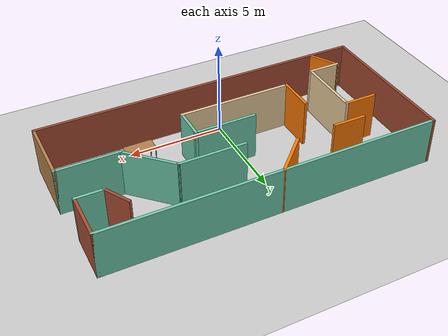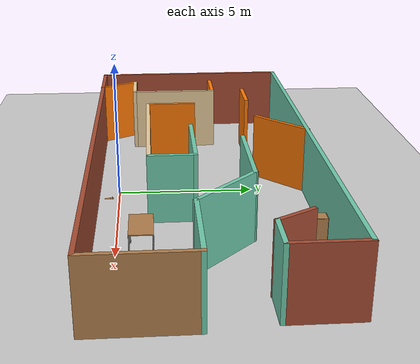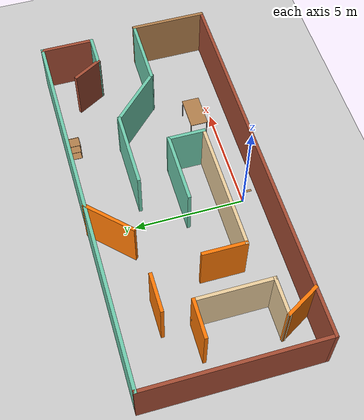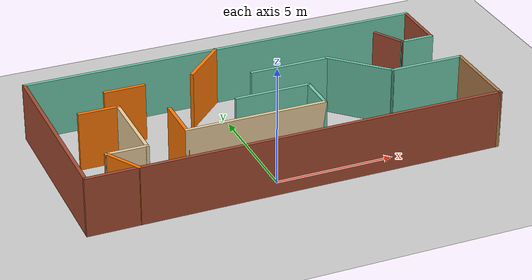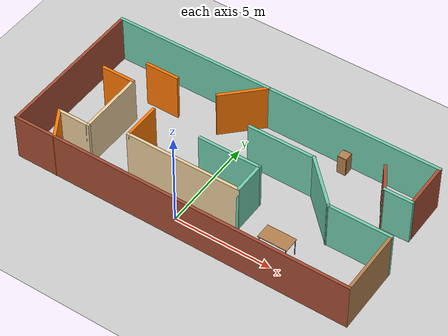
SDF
<sdf version="1.6">
 <world name="default">
  <light name="sun" type="directional">
   <pose>0 0 10 0 -0 0</pose>
   <diffuse>0.8 0.8 0.8 1</diffuse>
   <specular>0.2 0.2 0.2 1</specular>
   <attenuation>
    <range>1000</range>
    <constant>0.9</constant>
    <linear>0.01</linear>
    <quadratic>0.001</quadratic>
   </attenuation>
   <direction>-0.5 0.1 -0.9</direction>
  </light>
  <model name="ground_plane">
   <static>1</static>
   <link name="link">
    <collision name="collision">
     <geometry><plane><normal>0 0 1</normal><size>100 100</size></plane></geometry>
     <surface>
      <contact><collide_bitmask>65535</collide_bitmask></contact>
      <friction><ode><mu>100</mu><mu2>50</mu2></ode></friction>
     </surface>
    </collision>
    <visual name="visual">
     <cast_shadows>0</cast_shadows>
     <geometry><plane><normal>0 0 1</normal><size>100 100</size></plane></geometry>
     <material>
      <script><uri>file://media/materials/scripts/gazebo.material</uri><name>Gazebo/Grey</name></script>
     </material>
    </visual>
   </link>
  </model>
  <gravity>0 0 -9.8</gravity>
  <magnetic_field>6e-06 2.3e-05 -4.2e-05</magnetic_field>
  <atmosphere type="adiabatic"/>
  <physics name="default_physics" default="0" type="ode">
   <max_step_size>0.001</max_step_size>
   <real_time_factor>1</real_time_factor>
   <real_time_update_rate>1000</real_time_update_rate>
  </physics>
  <scene><ambient>0.4 0.4 0.4 1</ambient><background>0.7 0.7 0.7 1</background><shadows>1</shadows></scene>
  <spherical_coordinates>
   <surface_model>EARTH_WGS84</surface_model>
   <latitude_deg>0</latitude_deg>
   <longitude_deg>0</longitude_deg>
   <elevation>0</elevation>
   <heading_deg>0</heading_deg>
  </spherical_coordinates>
  <model name="miro_building">
   <pose>0.65367 3.11102 0 0 -0 0</pose>
   <link name="Wall_10">
    <collision name="Wall_10_Collision">
     <geometry><box><size>3.5 0.15 2.5</size></box></geometry>
     <pose>0 0 1.25 0 -0 0</pose>
    </collision>
    <visual name="Wall_10_Visual">
     <pose>0 0 1.25 0 -0 0</pose>
     <geometry><box><size>3.5 0.15 2.5</size></box></geometry>
     <material>
      <script><uri>file://media/materials/scripts/gazebo.material</uri><name>Gazebo/Grey</name></script>
      <ambient>0.435294 0.796078 0.67451 1</ambient>
     </material>
     <meta><layer>0</layer></meta>
    </visual>
    <pose>1.88475 1.43157 0 0 -0 3.14159</pose>
   </link>
   <link name="Wall_12">
    <collision name="Wall_12_Collision">
     <geometry><box><size>17.25 0.15 2.5</size></box></geometry>
     <pose>0 0 1.25 0 -0 0</pose>
    </collision>
    <visual name="Wall_12_Visual">
     <pose>0 0 1.25 0 -0 0</pose>
     <geometry><box><size>17.25 0.15 2.5</size></box></geometry>
     <material>
      <script><uri>file://media/materials/scripts/gazebo.material</uri><name>Gazebo/Grey</name></script>
      <ambient>0.435294 0.796078 0.67451 1</ambient>
     </material>
     <meta><layer>0</layer></meta>
    </visual>
    <pose>-0.125 3.91631 0 0 -0 0</pose>
   </link>
   <link name="Wall_13">
    <collision name="Wall_13_Collision">
     <geometry><box><size>2.5 0.15 2.5</size></box></geometry>
     <pose>0 0 1.25 0 -0 0</pose>
    </collision>
    <visual name="Wall_13_Visual">
     <pose>0 0 1.25 0 -0 0</pose>
     <geometry><box><size>2.5 0.15 2.5</size></box></geometry>
     <material>
      <script><uri>file://media/materials/scripts/gazebo.material</uri><name>Gazebo/Bricks</name></script>
      <ambient>1 1 1 1</ambient>
     </material>
     <meta><layer>0</layer></meta>
    </visual>
    <pose>8.425 2.74131 0 0 0 -1.5708</pose>
   </link>
   <link name="Wall_14">
    <collision name="Wall_14_Collision">
     <geometry><box><size>1.5 0.15 2.5</size></box></geometry>
     <pose>0 0 1.25 0 -0 0</pose>
    </collision>
    <visual name="Wall_14_Visual">
     <pose>0 0 1.25 0 -0 0</pose>
     <geometry><box><size>1.5 0.15 2.5</size></box></geometry>
     <material>
      <script><uri>file://media/materials/scripts/gazebo.material</uri><name>Gazebo/Grey</name></script>
      <ambient>0.435294 0.796078 0.67451 1</ambient>
     </material>
     <meta><layer>0</layer></meta>
    </visual>
    <pose>7.75 1.56631 0 0 -0 3.14159</pose>
   </link>
   <link name="Wall_15">
    <collision name="Wall_15_Collision">
     <geometry><box><size>1.5 0.15 2.5</size></box></geometry>
     <pose>0 0 1.25 0 -0 0</pose>
    </collision>
    <visual name="Wall_15_Visual">
     <pose>0 0 1.25 0 -0 0</pose>
     <geometry><box><size>1.5 0.15 2.5</size></box></geometry>
     <material>
      <script><uri>file://media/materials/scripts/gazebo.material</uri><name>Gazebo/Bricks</name></script>
      <ambient>1 1 1 1</ambient>
     </material>
     <meta><layer>0</layer></meta>
    </visual>
    <pose>6.7375 2.15088 0 0 -0 2.0944</pose>
   </link>
   <link name="Wall_17">
    <collision name="Wall_17_Collision">
     <geometry><box><size>2 0.15 2.5</size></box></geometry>
     <pose>0 0 1.25 0 -0 0</pose>
    </collision>
    <visual name="Wall_17_Visual">
     <pose>0 0 1.25 0 -0 0</pose>
     <geometry><box><size>2 0.15 2.5</size></box></geometry>
     <material>
      <script><uri>file://media/materials/scripts/gazebo.material</uri><name>Gazebo/Grey</name></script>
      <ambient>0.996078 0.47451 0.0196078 1</ambient>
     </material>
     <meta><layer>0</layer></meta>
    </visual>
    <pose>-3.94925 -1.05029 0 0 0 -1.5708</pose>
   </link>
   <link name="Wall_18">
    <collision name="Wall_18_Collision">
     <geometry><box><size>6 0.15 2.5</size></box></geometry>
     <pose>0 0 1.25 0 -0 0</pose>
    </collision>
    <visual name="Wall_18_Visual">
     <pose>0 0 1.25 0 -0 0</pose>
     <geometry><box><size>6 0.15 2.5</size></box></geometry>
     <material>
      <script><uri>file://media/materials/scripts/gazebo.material</uri><name>Gazebo/Grey</name></script>
      <ambient>0.921569 0.807843 0.615686 1</ambient>
     </material>
     <meta><layer>0</layer></meta>
    </visual>
    <pose>-1.02425 -1.97529 0 0 -0 0</pose>
   </link>
   <link name="Wall_19">
    <collision name="Wall_19_Collision">
     <geometry><box><size>1.75 0.15 2.5</size></box></geometry>
     <pose>0 0 1.25 0 -0 0</pose>
    </collision>
    <visual name="Wall_19_Visual">
     <pose>0 0 1.25 0 -0 0</pose>
     <geometry><box><size>1.75 0.15 2.5</size></box></geometry>
     <material>
      <script><uri>file://media/materials/scripts/gazebo.material</uri><name>Gazebo/Grey</name></script>
      <ambient>0.435294 0.796078 0.67451 1</ambient>
     </material>
     <meta><layer>0</layer></meta>
    </visual>
    <pose>1.90075 -1.17529 0 0 -0 1.5708</pose>
   </link>
   <link name="Wall_20">
    <collision name="Wall_20_Collision">
     <geometry><box><size>3.25 0.15 2.5</size></box></geometry>
     <pose>0 0 1.25 0 -0 0</pose>
    </collision>
    <visual name="Wall_20_Visual">
     <pose>0 0 1.25 0 -0 0</pose>
     <geometry><box><size>3.25 0.15 2.5</size></box></geometry>
     <material>
      <script><uri>file://media/materials/scripts/gazebo.material</uri><name>Gazebo/Grey</name></script>
      <ambient>0.435294 0.796078 0.67451 1</ambient>
     </material>
     <meta><layer>0</layer></meta>
    </visual>
    <pose>0.350752 -0.375291 0 0 -0 3.14159</pose>
   </link>
   <link name="Wall_22">
    <collision name="Wall_22_Collision">
     <geometry><box><size>2.5 0.15 2.5</size></box></geometry>
     <pose>0 0 1.25 0 -0 0</pose>
    </collision>
    <visual name="Wall_22_Visual">
     <pose>0 0 1.25 0 -0 0</pose>
     <geometry><box><size>2.5 0.15 2.5</size></box></geometry>
     <material>
      <script><uri>file://media/materials/scripts/gazebo.material</uri><name>Gazebo/Grey</name></script>
      <ambient>0.996078 0.47451 0.0196078 1</ambient>
     </material>
     <meta><layer>0</layer></meta>
    </visual>
    <pose>-1.25836 3.08734 0 0 0 -2.35619</pose>
   </link>
   <link name="Wall_24">
    <collision name="Wall_24_Collision">
     <geometry><box><size>1.75 0.15 2.5</size></box></geometry>
     <pose>0 0 1.25 0 -0 0</pose>
    </collision>
    <visual name="Wall_24_Visual">
     <pose>0 0 1.25 0 -0 0</pose>
     <geometry><box><size>1.75 0.15 2.5</size></box></geometry>
     <material>
      <script><uri>file://media/materials/scripts/gazebo.material</uri><name>Gazebo/Grey</name></script>
      <ambient>0.996078 0.47451 0.0196078 1</ambient>
     </material>
     <meta><layer>0</layer></meta>
    </visual>
    <pose>-5.06229 2.11819 0 0 -0 3.14159</pose>
   </link>
   <link name="Wall_26">
    <collision name="Wall_26_Collision">
     <geometry><box><size>1.75 0.15 2.5</size></box></geometry>
     <pose>0 0 1.25 0 -0 0</pose>
    </collision>
    <visual name="Wall_26_Visual">
     <pose>0 0 1.25 0 -0 0</pose>
     <geometry><box><size>1.75 0.15 2.5</size></box></geometry>
     <material>
      <script><uri>file://media/materials/scripts/gazebo.material</uri><name>Gazebo/Grey</name></script>
      <ambient>0.996078 0.47451 0.0196078 1</ambient>
     </material>
     <meta><layer>0</layer></meta>
    </visual>
    <pose>-6.56664 0.813839 0 0 -0 0</pose>
   </link>
   <link name="Wall_27">
    <collision name="Wall_27_Collision">
     <geometry><box><size>3.5 0.15 2.5</size></box></geometry>
     <pose>0 0 1.25 0 -0 0</pose>
    </collision>
    <visual name="Wall_27_Visual">
     <pose>0 0 1.25 0 -0 0</pose>
     <geometry><box><size>3.5 0.15 2.5</size></box></geometry>
     <material>
      <script><uri>file://media/materials/scripts/gazebo.material</uri><name>Gazebo/Grey</name></script>
      <ambient>0.921569 0.807843 0.615686 1</ambient>
     </material>
     <meta><layer>0</layer></meta>
    </visual>
    <pose>-5.76664 -0.861161 0 0 0 -1.5708</pose>
   </link>
   <link name="Wall_29">
    <collision name="Wall_29_Collision">
     <geometry><box><size>1.75 0.15 2.5</size></box></geometry>
     <pose>0 0 1.25 0 -0 0</pose>
    </collision>
    <visual name="Wall_29_Visual">
     <pose>0 0 1.25 0 -0 0</pose>
     <geometry><box><size>1.75 0.15 2.5</size></box></geometry>
     <material>
      <script><uri>file://media/materials/scripts/gazebo.material</uri><name>Gazebo/Grey</name></script>
      <ambient>0.921569 0.807843 0.615686 1</ambient>
     </material>
     <meta><layer>0</layer></meta>
    </visual>
    <pose>-6.56664 -2.53616 0 0 -0 3.14159</pose>
   </link>
   <link name="Wall_3">
    <collision name="Wall_3_Collision">
     <geometry><box><size>8 0.15 2.5</size></box></geometry>
     <pose>0 0 1.25 0 -0 0</pose>
    </collision>
    <visual name="Wall_3_Visual">
     <pose>0 0 1.25 0 -0 0</pose>
     <geometry><box><size>8 0.15 2.5</size></box></geometry>
     <material>
      <script><uri>file://media/materials/scripts/gazebo.material</uri><name>Gazebo/Bricks</name></script>
      <ambient>1 1 1 1</ambient>
     </material>
     <meta><layer>0</layer></meta>
    </visual>
    <pose>-8.675 -0.008686 0 0 -0 1.5708</pose>
   </link>
   <link name="Wall_30">
    <collision name="Wall_30_Collision">
     <geometry><box><size>1.75 0.15 2.5</size></box></geometry>
     <pose>0 0 1.25 0 -0 0</pose>
    </collision>
    <visual name="Wall_30_Visual">
     <pose>0 0 1.25 0 -0 0</pose>
     <geometry><box><size>1.75 0.15 2.5</size></box></geometry>
     <material>
      <script><uri>file://media/materials/scripts/gazebo.material</uri><name>Gazebo/Grey</name></script>
      <ambient>0.996078 0.47451 0.0196078 1</ambient>
     </material>
     <meta><layer>0</layer></meta>
    </visual>
    <pose>-6.96664 -3.22898 0 0 0 -1.0472</pose>
   </link>
   <link name="Wall_6">
    <collision name="Wall_6_Collision">
     <geometry><box><size>17.5 0.15 2.5</size></box></geometry>
     <pose>0 0 1.25 0 -0 0</pose>
    </collision>
    <visual name="Wall_6_Visual">
     <pose>0 0 1.25 0 -0 0</pose>
     <geometry><box><size>17.5 0.15 2.5</size></box></geometry>
     <material>
      <script><uri>file://media/materials/scripts/gazebo.material</uri><name>Gazebo/Bricks</name></script>
      <ambient>1 1 1 1</ambient>
     </material>
     <meta><layer>0</layer></meta>
    </visual>
    <pose>0 -3.93369 0 0 -0 0</pose>
   </link>
   <link name="Wall_7">
    <collision name="Wall_7_Collision">
     <geometry><box><size>3.5 0.15 2.5</size></box></geometry>
     <pose>0 0 1.25 0 -0 0</pose>
    </collision>
    <visual name="Wall_7_Visual">
     <pose>0 0 1.25 0 -0 0</pose>
     <geometry><box><size>3.5 0.15 2.5</size></box></geometry>
     <material>
      <script><uri>file://media/materials/scripts/gazebo.material</uri><name>Gazebo/Wood</name></script>
      <ambient>1 1 1 1</ambient>
     </material>
     <meta><layer>0</layer></meta>
    </visual>
    <pose>8.675 -2.25869 0 0 -0 1.5708</pose>
   </link>
   <link name="Wall_8">
    <collision name="Wall_8_Collision">
     <geometry><box><size>3.25 0.15 2.5</size></box></geometry>
     <pose>0 0 1.25 0 -0 0</pose>
    </collision>
    <visual name="Wall_8_Visual">
     <pose>0 0 1.25 0 -0 0</pose>
     <geometry><box><size>3.25 0.15 2.5</size></box></geometry>
     <material>
      <script><uri>file://media/materials/scripts/gazebo.material</uri><name>Gazebo/Grey</name></script>
      <ambient>0.435294 0.796078 0.67451 1</ambient>
     </material>
     <meta><layer>0</layer></meta>
    </visual>
    <pose>7.125 -0.583686 0 0 -0 3.14159</pose>
   </link>
   <link name="Wall_9">
    <collision name="Wall_9_Collision">
     <geometry><box><size>3 0.15 2.5</size></box></geometry>
     <pose>0 0 1.25 0 -0 0</pose>
    </collision>
    <visual name="Wall_9_Visual">
     <pose>0 0 1.25 0 -0 0</pose>
     <geometry><box><size>3 0.15 2.5</size></box></geometry>
     <material>
      <script><uri>file://media/materials/scripts/gazebo.material</uri><name>Gazebo/Grey</name></script>
      <ambient>0.435294 0.796078 0.67451 1</ambient>
     </material>
     <meta><layer>0</layer></meta>
    </visual>
    <pose>4.56737 0.423941 0 0 -0 2.35619</pose>
   </link>
   <static>1</static>
  </model>
  <plugin name="collision_map_creator" filename="libcollision_map_creator.so"/>
  <model name="table">
   <static>1</static>
   <link name="link">
    <collision name="surface">
     <pose>0 0 1 0 -0 0</pose>
     <geometry><box><size>1.5 0.8 0.03</size></box></geometry>
     <surface><friction><ode><mu>0.6</mu><mu2>0.6</mu2></ode></friction></surface>
    </collision>
    <visual name="visual1">
     <pose>0 0 1 0 -0 0</pose>
     <geometry><box><size>1.5 0.8 0.03</size></box></geometry>
     <material>
      <script><uri>file://media/materials/scripts/gazebo.material</uri><name>Gazebo/Wood</name></script>
     </material>
    </visual>
    <collision name="front_left_leg">
     <pose>0.68 0.38 0.5 0 -0 0</pose>
     <geometry><cylinder><radius>0.02</radius><length>1</length></cylinder></geometry>
    </collision>
    <visual name="front_left_leg">
     <pose>0.68 0.38 0.5 0 -0 0</pose>
     <geometry><cylinder><radius>0.02</radius><length>1</length></cylinder></geometry>
     <material>
      <script><uri>file://media/materials/scripts/gazebo.material</uri><name>Gazebo/Grey</name></script>
     </material>
    </visual>
    <collision name="front_right_leg">
     <pose>0.68 -0.38 0.5 0 -0 0</pose>
     <geometry><cylinder><radius>0.02</radius><length>1</length></cylinder></geometry>
    </collision>
    <visual name="front_right_leg">
     <pose>0.68 -0.38 0.5 0 -0 0</pose>
     <geometry><cylinder><radius>0.02</radius><length>1</length></cylinder></geometry>
     <material>
      <script><uri>file://media/materials/scripts/gazebo.material</uri><name>Gazebo/Grey</name></script>
     </material>
    </visual>
    <collision name="back_right_leg">
     <pose>-0.68 -0.38 0.5 0 -0 0</pose>
     <geometry><cylinder><radius>0.02</radius><length>1</length></cylinder></geometry>
    </collision>
    <visual name="back_right_leg">
     <pose>-0.68 -0.38 0.5 0 -0 0</pose>
     <geometry><cylinder><radius>0.02</radius><length>1</length></cylinder></geometry>
     <material>
      <script><uri>file://media/materials/scripts/gazebo.material</uri><name>Gazebo/Grey</name></script>
     </material>
    </visual>
    <collision name="back_left_leg">
     <pose>-0.68 0.38 0.5 0 -0 0</pose>
     <geometry><cylinder><radius>0.02</radius><length>1</length></cylinder></geometry>
    </collision>
    <visual name="back_left_leg">
     <pose>-0.68 0.38 0.5 0 -0 0</pose>
     <geometry><cylinder><radius>0.02</radius><length>1</length></cylinder></geometry>
     <material>
      <script><uri>file://media/materials/scripts/gazebo.material</uri><name>Gazebo/Grey</name></script>
     </material>
    </visual>
   </link>
   <pose>4.75405 0.852451 0 0 -0 0</pose>
  </model>
  <model name="cabinet">
   <static>1</static>
   <link name="cabinet_bottom_plate">
    <inertial>
     <pose>0 0 -1 0 -0 0</pose>
     <inertia><ixx>2.05</ixx><ixy>0</ixy><ixz>0</ixz><iyy>2.05</iyy><iyz>0</iyz><izz>2.05</izz></inertia>
     <mass>25</mass>
    </inertial>
    <collision name="cabinet_bottom_plate_geom">
     <pose>0 0 0.01 0 -0 0</pose>
     <geometry><box><size>0.45 0.45 0.02</size></box></geometry>
    </collision>
    <visual name="cabinet_bottom_plate_geom_visual">
     <pose>0 0 0.01 0 -0 0</pose>
     <geometry><box><size>0.45 0.45 0.02</size></box></geometry>
     <material>
      <script><uri>file://media/materials/scripts/gazebo.material</uri><name>Gazebo/Wood</name></script>
     </material>
    </visual>
    <collision name="cabinet_bottom_plate_geom_cabinet_back_plate">
     <pose>0.235 0 0.51 0 -0 0</pose>
     <geometry><box><size>0.02 0.45 1.02</size></box></geometry>
    </collision>
    <visual name="cabinet_bottom_plate_geom_cabinet_back_plate_visual">
     <pose>0.235 0 0.51 0 -0 0</pose>
     <geometry><box><size>0.02 0.45 1.02</size></box></geometry>
     <material>
      <script><uri>file://media/materials/scripts/gazebo.material</uri><name>Gazebo/Wood</name></script>
     </material>
    </visual>
    <collision name="cabinet_bottom_plate_geom_cabinet_left_plate">
     <pose>0 0.235 0.51 0 -0 0</pose>
     <geometry><box><size>0.45 0.02 1.02</size></box></geometry>
    </collision>
    <visual name="cabinet_bottom_plate_geom_cabinet_left_plate_visual">
     <pose>0 0.235 0.51 0 -0 0</pose>
     <geometry><box><size>0.45 0.02 1.02</size></box></geometry>
     <material>
      <script><uri>file://media/materials/scripts/gazebo.material</uri><name>Gazebo/Wood</name></script>
     </material>
    </visual>
    <collision name="cabinet_bottom_plate_geom_cabinet_middle_plate">
     <pose>0 0 0.51 0 -0 0</pose>
     <geometry><box><size>0.45 0.45 0.02</size></box></geometry>
    </collision>
    <visual name="cabinet_bottom_plate_geom_cabinet_middle_plate_visual">
     <pose>0 0 0.51 0 -0 0</pose>
     <geometry><box><size>0.45 0.45 0.02</size></box></geometry>
     <material>
      <script><uri>file://media/materials/scripts/gazebo.material</uri><name>Gazebo/Wood</name></script>
     </material>
    </visual>
    <collision name="cabinet_bottom_plate_geom_cabinet_right_plate">
     <pose>0 -0.235 0.51 0 -0 0</pose>
     <geometry><box><size>0.45 0.02 1.02</size></box></geometry>
    </collision>
    <visual name="cabinet_bottom_plate_geom_cabinet_right_plate_visual">
     <pose>0 -0.235 0.51 0 -0 0</pose>
     <geometry><box><size>0.45 0.02 1.02</size></box></geometry>
     <material>
      <script><uri>file://media/materials/scripts/gazebo.material</uri><name>Gazebo/Wood</name></script>
     </material>
    </visual>
    <collision name="cabinet_bottom_plate_geom_cabinet_top_plate">
     <pose>0 0 1.01 0 -0 0</pose>
     <geometry><box><size>0.45 0.45 0.02</size></box></geometry>
    </collision>
    <visual name="cabinet_bottom_plate_geom_cabinet_top_plate_visual">
     <pose>0 0 1.01 0 -0 0</pose>
     <geometry><box><size>0.45 0.45 0.02</size></box></geometry>
     <material>
      <script><uri>file://media/materials/scripts/gazebo.material</uri><name>Gazebo/Wood</name></script>
     </material>
    </visual>
   </link>
   <pose>4.56098 6.64937 0 0 -0 0</pose>
  </model>
  <model name="wooden_peg_board">
   <link name="wooden_board::base">
    <pose>0 0 0.00523 0 -0 0</pose>
    <inertial>
     <mass>0.2765</mass>
     <inertia>
      <ixx>0.0025148</ixx>
      <ixy>0</ixy>
      <ixz>0</ixz>
      <iyy>0.00024037</iyy>
      <iyz>0</iyz>
      <izz>0.00275013</izz>
     </inertia>
    </inertial>
    <collision name="collision">
     <geometry><box><size>0.1016 0.3302 0.01046</size></box></geometry>
     <surface>
      <contact>
       <poissons_ratio>0.347</poissons_ratio>
       <elastic_modulus>8.8e+09</elastic_modulus>
       <ode><kp>100000</kp><kd>100</kd><max_vel>100</max_vel><min_depth>0.001</min_depth></ode>
      </contact>
      <friction>
       <torsional>
        <coefficient>1</coefficient>
        <use_patch_radius>0</use_patch_radius>
        <surface_radius>0.01</surface_radius>
       </torsional>
      </friction>
     </surface>
    </collision>
    <visual name="visual">
     <geometry><box><size>0.1016 0.3302 0.01046</size></box></geometry>
     <material>
      <script><uri>file://media/materials/scripts/gazebo.material</uri><name>Gazebo/Wood</name></script>
     </material>
    </visual>
    <visual name="tee_nut_1">
     <pose>0 -0.116 0 0 -0 0</pose>
     <geometry><cylinder><radius>0.00635</radius><length>0.0105646</length></cylinder></geometry>
     <material>
      <script><uri>file://media/materials/scripts/gazebo.material</uri><name>Gazebo/Grey</name></script>
     </material>
    </visual>
    <visual name="tee_nut_2">
     <pose>0 -0.038 0 0 -0 0</pose>
     <geometry><cylinder><radius>0.00635</radius><length>0.0105646</length></cylinder></geometry>
     <material>
      <script><uri>file://media/materials/scripts/gazebo.material</uri><name>Gazebo/Grey</name></script>
     </material>
    </visual>
    <visual name="tee_nut_3">
     <pose>0 0.038 0 0 -0 0</pose>
     <geometry><cylinder><radius>0.00635</radius><length>0.0105646</length></cylinder></geometry>
     <material>
      <script><uri>file://media/materials/scripts/gazebo.material</uri><name>Gazebo/Grey</name></script>
     </material>
    </visual>
    <visual name="tee_nut_4">
     <pose>0 0.116 0 0 -0 0</pose>
     <geometry><cylinder><radius>0.00635</radius><length>0.0105646</length></cylinder></geometry>
     <material>
      <script><uri>file://media/materials/scripts/gazebo.material</uri><name>Gazebo/Grey</name></script>
     </material>
    </visual>
   </link>
   <link name="peg::link">
    <pose>0 0.116 0.04 0 -0 0</pose>
    <inertial>
     <mass>0.0175</mass>
     <inertia>
      <ixx>9.74923e-06</ixx>
      <ixy>0</ixy>
      <ixz>0</ixz>
      <iyy>9.74923e-06</iyy>
      <iyz>0</iyz>
      <izz>8.31797e-07</izz>
     </inertia>
    </inertial>
    <collision name="collision">
     <geometry><cylinder><radius>0.00975</radius><length>0.08</length></cylinder></geometry>
     <surface>
      <contact>
       <poissons_ratio>0.347</poissons_ratio>
       <elastic_modulus>8.8e+09</elastic_modulus>
       <ode><kp>100000</kp><kd>100</kd><max_vel>100</max_vel><min_depth>0.001</min_depth></ode>
      </contact>
      <friction>
       <torsional>
        <coefficient>1</coefficient>
        <use_patch_radius>0</use_patch_radius>
        <surface_radius>0.01</surface_radius>
       </torsional>
      </friction>
     </surface>
    </collision>
    <visual name="visual">
     <geometry><cylinder><radius>0.00975</radius><length>0.08</length></cylinder></geometry>
     <material>
      <script><uri>file://media/materials/scripts/gazebo.material</uri><name>Gazebo/Wood</name></script>
     </material>
    </visual>
   </link>
   <joint name="board_peg" type="revolute">
    <parent>wooden_board::base</parent>
    <child>peg::link</child>
    <axis>
     <xyz>0 0 1</xyz>
     <limit><upper>0</upper><lower>0</lower></limit>
     <use_parent_model_frame>0</use_parent_model_frame>
     <dynamics><spring_reference>0</spring_reference><spring_stiffness>0</spring_stiffness></dynamics>
    </axis>
   </joint>
   <pose>0.482657 -0.381146 -0.001004 1.3e-05 -1e-06 -1e-06</pose>
  </model>
 </world>
</sdf>
